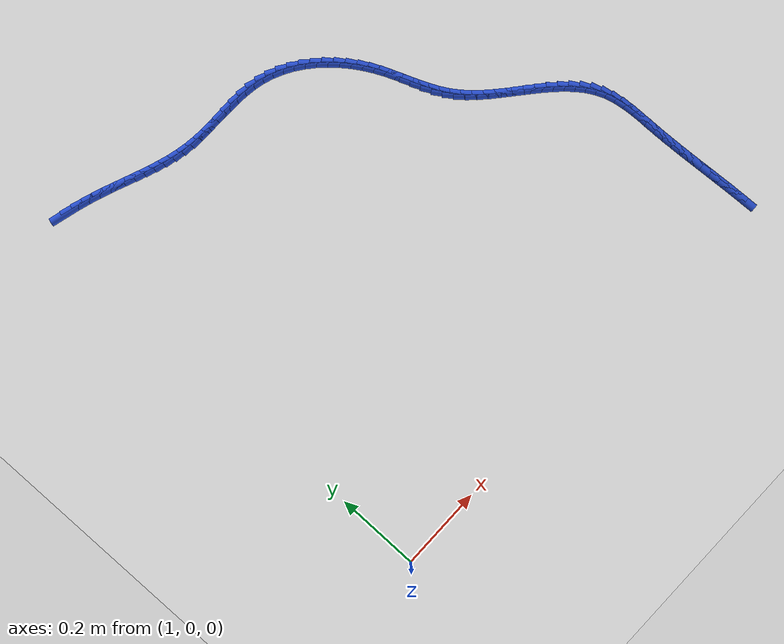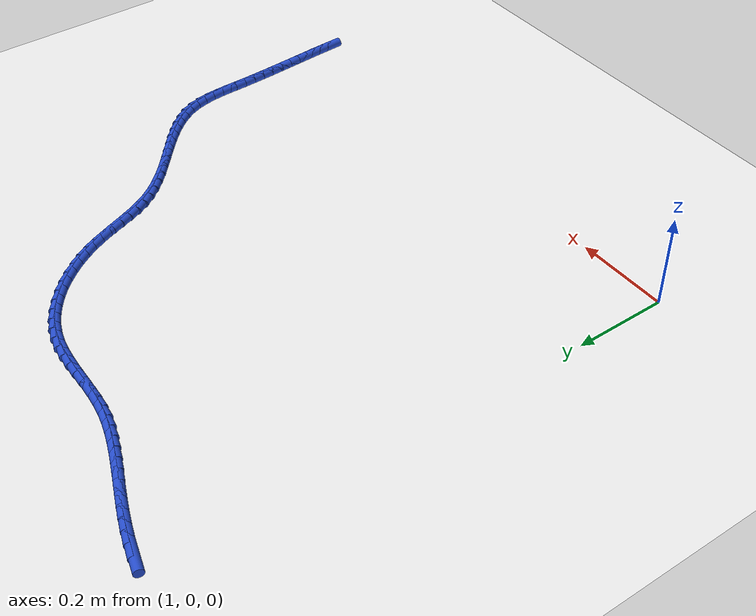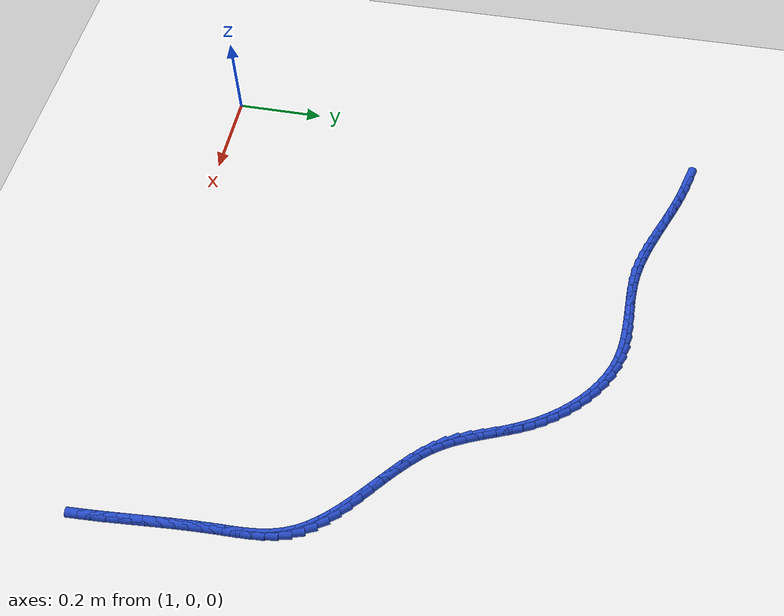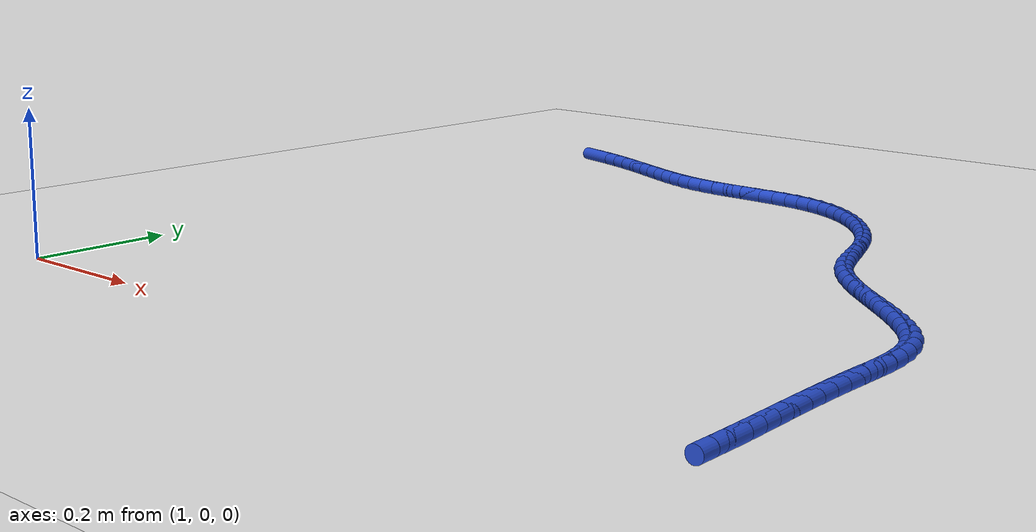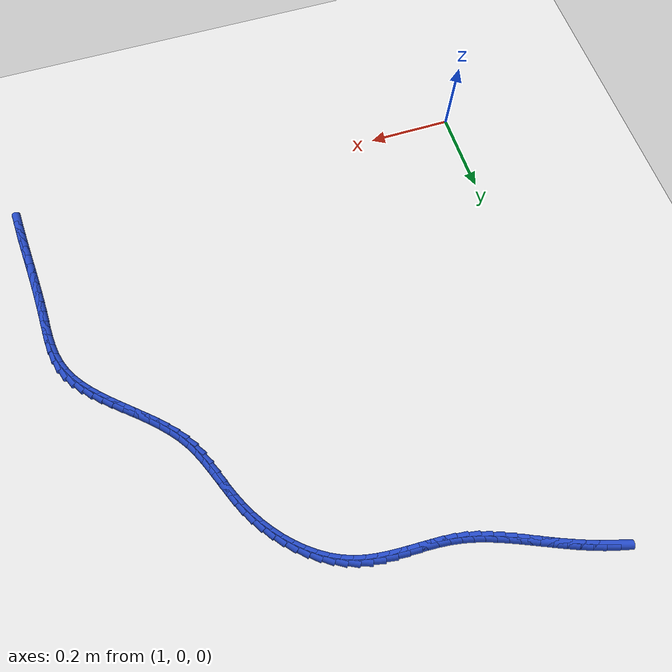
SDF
<sdf version="1.6">
 <world name="default">
  <model name="ground_plane">
   <static>1</static>
   <link name="link">
    <collision name="collision">
     <geometry><plane><normal>0 0 1</normal><size>100 100</size></plane></geometry>
     <surface><friction><ode><mu>100</mu><mu2>50</mu2></ode></friction></surface>
    </collision>
    <visual name="visual">
     <cast_shadows>0</cast_shadows>
     <geometry><plane><normal>0 0 1</normal><size>100 100</size></plane></geometry>
     <material>
      <script><uri>file://media/materials/scripts/gazebo.material</uri><name>Gazebo/WhiteGlow</name></script>
     </material>
    </visual>
   </link>
  </model>
  <model name="line">
   <link name="link_68">
    <pose>1.0628093719733607 1.0906287862453112 0.01 0 1.57 -0.2802615138921303</pose>
    <collision name="collision">
     <geometry><cylinder><radius>0.01</radius><length>0.08</length></cylinder></geometry>
    </collision>
    <visual name="visual">
     <material>
      <script><name>Gazebo/Blue</name><uri>file://media/materials/scripts/gazebo.material</uri></script>
     </material>
     <geometry><cylinder><radius>0.01</radius><length>0.08</length></cylinder></geometry>
    </visual>
   </link>
   <link name="link_69">
    <pose>1.0898194103138965 1.082854284743362 0.01 0 1.57 -0.3176067651948003</pose>
    <collision name="collision">
     <geometry><cylinder><radius>0.01</radius><length>0.08</length></cylinder></geometry>
    </collision>
    <visual name="visual">
     <material>
      <script><name>Gazebo/Blue</name><uri>file://media/materials/scripts/gazebo.material</uri></script>
     </material>
     <geometry><cylinder><radius>0.01</radius><length>0.08</length></cylinder></geometry>
    </visual>
   </link>
   <link name="link_70">
    <pose>1.1161449455556485 1.0742001481301984 0.01 0 1.57 -0.34963420881714574</pose>
    <collision name="collision">
     <geometry><cylinder><radius>0.01</radius><length>0.08</length></cylinder></geometry>
    </collision>
    <visual name="visual">
     <material>
      <script><name>Gazebo/Blue</name><uri>file://media/materials/scripts/gazebo.material</uri></script>
     </material>
     <geometry><cylinder><radius>0.01</radius><length>0.08</length></cylinder></geometry>
    </visual>
   </link>
   <link name="link_71">
    <pose>1.1415730427100592 1.064928707435475 0.01 0 1.57 -0.3742459113744424</pose>
    <collision name="collision">
     <geometry><cylinder><radius>0.01</radius><length>0.08</length></cylinder></geometry>
    </collision>
    <visual name="visual">
     <material>
      <script><name>Gazebo/Blue</name><uri>file://media/materials/scripts/gazebo.material</uri></script>
     </material>
     <geometry><cylinder><radius>0.01</radius><length>0.08</length></cylinder></geometry>
    </visual>
   </link>
   <link name="link_72">
    <pose>1.1661878675069677 1.0552610896295747 0.01 0 1.57 -0.3902260509429083</pose>
    <collision name="collision">
     <geometry><cylinder><radius>0.01</radius><length>0.08</length></cylinder></geometry>
    </collision>
    <visual name="visual">
     <material>
      <script><name>Gazebo/Blue</name><uri>file://media/materials/scripts/gazebo.material</uri></script>
     </material>
     <geometry><cylinder><radius>0.01</radius><length>0.08</length></cylinder></geometry>
    </visual>
   </link>
   <link name="link_73">
    <pose>1.1901396593611218 1.0454092581101886 0.01 0 1.57 -0.3968916456069579</pose>
    <collision name="collision">
     <geometry><cylinder><radius>0.01</radius><length>0.08</length></cylinder></geometry>
    </collision>
    <visual name="visual">
     <material>
      <script><name>Gazebo/Blue</name><uri>file://media/materials/scripts/gazebo.material</uri></script>
     </material>
     <geometry><cylinder><radius>0.01</radius><length>0.08</length></cylinder></geometry>
    </visual>
   </link>
   <link name="link_74">
    <pose>1.2135786576872707 1.0355851762750101 0.01 0 1.57 -0.39365272293426523</pose>
    <collision name="collision">
     <geometry><cylinder><radius>0.01</radius><length>0.08</length></cylinder></geometry>
    </collision>
    <visual name="visual">
     <material>
      <script><name>Gazebo/Blue</name><uri>file://media/materials/scripts/gazebo.material</uri></script>
     </material>
     <geometry><cylinder><radius>0.01</radius><length>0.08</length></cylinder></geometry>
    </visual>
   </link>
   <link name="link_75">
    <pose>1.2366551019001624 1.0260008075217302 0.01 0 1.57 -0.3800176555319</pose>
    <collision name="collision">
     <geometry><cylinder><radius>0.01</radius><length>0.08</length></cylinder></geometry>
    </collision>
    <visual name="visual">
     <material>
      <script><name>Gazebo/Blue</name><uri>file://media/materials/scripts/gazebo.material</uri></script>
     </material>
     <geometry><cylinder><radius>0.01</radius><length>0.08</length></cylinder></geometry>
    </visual>
   </link>
   <link name="link_76">
    <pose>1.2595192314145456 1.0168681152480417 0.01 0 1.57 -0.3556250150488615</pose>
    <collision name="collision">
     <geometry><cylinder><radius>0.01</radius><length>0.08</length></cylinder></geometry>
    </collision>
    <visual name="visual">
     <material>
      <script><name>Gazebo/Blue</name><uri>file://media/materials/scripts/gazebo.material</uri></script>
     </material>
     <geometry><cylinder><radius>0.01</radius><length>0.08</length></cylinder></geometry>
    </visual>
   </link>
   <link name="link_77">
    <pose>1.2823212856451687 1.0083990628516366 0.01 0 1.57 -0.3203098907652909</pose>
    <collision name="collision">
     <geometry><cylinder><radius>0.01</radius><length>0.08</length></cylinder></geometry>
    </collision>
    <visual name="visual">
     <material>
      <script><name>Gazebo/Blue</name><uri>file://media/materials/scripts/gazebo.material</uri></script>
     </material>
     <geometry><cylinder><radius>0.01</radius><length>0.08</length></cylinder></geometry>
    </visual>
   </link>
   <link name="link_78">
    <pose>1.3052115040067798 1.0008056137302064 0.01 0 1.57 -0.27420581645033437</pose>
    <collision name="collision">
     <geometry><cylinder><radius>0.01</radius><length>0.08</length></cylinder></geometry>
    </collision>
    <visual name="visual">
     <material>
      <script><name>Gazebo/Blue</name><uri>file://media/materials/scripts/gazebo.material</uri></script>
     </material>
     <geometry><cylinder><radius>0.01</radius><length>0.08</length></cylinder></geometry>
    </visual>
   </link>
   <link name="link_79">
    <pose>1.3283401259141272 0.9942997312814437 0.01 0 1.57 -0.21787027960239017</pose>
    <collision name="collision">
     <geometry><cylinder><radius>0.01</radius><length>0.08</length></cylinder></geometry>
    </collision>
    <visual name="visual">
     <material>
      <script><name>Gazebo/Blue</name><uri>file://media/materials/scripts/gazebo.material</uri></script>
     </material>
     <geometry><cylinder><radius>0.01</radius><length>0.08</length></cylinder></geometry>
    </visual>
   </link>
   <link name="link_80">
    <pose>1.35185739078196 0.9890933789030405 0.01 0 1.57 -0.15258427737276412</pose>
    <collision name="collision">
     <geometry><cylinder><radius>0.01</radius><length>0.08</length></cylinder></geometry>
    </collision>
    <visual name="visual">
     <material>
      <script><name>Gazebo/Blue</name><uri>file://media/materials/scripts/gazebo.material</uri></script>
     </material>
     <geometry><cylinder><radius>0.01</radius><length>0.08</length></cylinder></geometry>
    </visual>
   </link>
   <link name="link_81">
    <pose>1.3759116846736923 0.9853943200803523 0.01 0 1.57 -0.09104105246855446</pose>
    <collision name="collision">
     <geometry><cylinder><radius>0.01</radius><length>0.08</length></cylinder></geometry>
    </collision>
    <visual name="visual">
     <material>
      <script><name>Gazebo/Blue</name><uri>file://media/materials/scripts/gazebo.material</uri></script>
     </material>
     <geometry><cylinder><radius>0.01</radius><length>0.08</length></cylinder></geometry>
    </visual>
   </link>
   <link name="link_82">
    <pose>1.400534922306277 0.9831463805142846 0.01 0 1.57 -0.05063932183384074</pose>
    <collision name="collision">
     <geometry><cylinder><radius>0.01</radius><length>0.08</length></cylinder></geometry>
    </collision>
    <visual name="visual">
     <material>
      <script><name>Gazebo/Blue</name><uri>file://media/materials/scripts/gazebo.material</uri></script>
     </material>
     <geometry><cylinder><radius>0.01</radius><length>0.08</length></cylinder></geometry>
    </visual>
   </link>
   <link name="link_83">
    <pose>1.425575390376145 0.9818772631908301 0.01 0 1.57 -0.03159195191664703</pose>
    <collision name="collision">
     <geometry><cylinder><radius>0.01</radius><length>0.08</length></cylinder></geometry>
    </collision>
    <visual name="visual">
     <material>
      <script><name>Gazebo/Blue</name><uri>file://media/materials/scripts/gazebo.material</uri></script>
     </material>
     <geometry><cylinder><radius>0.01</radius><length>0.08</length></cylinder></geometry>
    </visual>
   </link>
   <link name="link_84">
    <pose>1.450865211971886 0.9810780424575064 0.01 0 1.57 -0.033027280614031415</pose>
    <collision name="collision">
     <geometry><cylinder><radius>0.01</radius><length>0.08</length></cylinder></geometry>
    </collision>
    <visual name="visual">
     <material>
      <script><name>Gazebo/Blue</name><uri>file://media/materials/scripts/gazebo.material</uri></script>
     </material>
     <geometry><cylinder><radius>0.01</radius><length>0.08</length></cylinder></geometry>
    </visual>
   </link>
   <link name="link_85">
    <pose>1.476236510182089 0.9802397926618301 0.01 0 1.57 -0.05476859028792677</pose>
    <collision name="collision">
     <geometry><cylinder><radius>0.01</radius><length>0.08</length></cylinder></geometry>
    </collision>
    <visual name="visual">
     <material>
      <script><name>Gazebo/Blue</name><uri>file://media/materials/scripts/gazebo.material</uri></script>
     </material>
     <geometry><cylinder><radius>0.01</radius><length>0.08</length></cylinder></geometry>
    </visual>
   </link>
   <link name="link_86">
    <pose>1.5015214080953452 0.9788535881513192 0.01 0 1.57 -0.09729566542460004</pose>
    <collision name="collision">
     <geometry><cylinder><radius>0.01</radius><length>0.08</length></cylinder></geometry>
    </collision>
    <visual name="visual">
     <material>
      <script><name>Gazebo/Blue</name><uri>file://media/materials/scripts/gazebo.material</uri></script>
     </material>
     <geometry><cylinder><radius>0.01</radius><length>0.08</length></cylinder></geometry>
    </visual>
   </link>
   <link name="link_87">
    <pose>1.5265520288002434 0.9764105032734904 0.01 0 1.57 -0.16148838562098314</pose>
    <collision name="collision">
     <geometry><cylinder><radius>0.01</radius><length>0.08</length></cylinder></geometry>
    </collision>
    <visual name="visual">
     <material>
      <script><name>Gazebo/Blue</name><uri>file://media/materials/scripts/gazebo.material</uri></script>
     </material>
     <geometry><cylinder><radius>0.01</radius><length>0.08</length></cylinder></geometry>
    </visual>
   </link>
   <link name="link_88">
    <pose>1.5511604953853733 0.972401612375861 0.01 0 1.57 -0.2480724559041302</pose>
    <collision name="collision">
     <geometry><cylinder><radius>0.01</radius><length>0.08</length></cylinder></geometry>
    </collision>
    <visual name="visual">
     <material>
      <script><name>Gazebo/Blue</name><uri>file://media/materials/scripts/gazebo.material</uri></script>
     </material>
     <geometry><cylinder><radius>0.01</radius><length>0.08</length></cylinder></geometry>
    </visual>
   </link>
   <link name="link_89">
    <pose>1.5751789309393256 0.9663179898059485 0.01 0 1.57 -0.35248880390387805</pose>
    <collision name="collision">
     <geometry><cylinder><radius>0.01</radius><length>0.08</length></cylinder></geometry>
    </collision>
    <visual name="visual">
     <material>
      <script><name>Gazebo/Blue</name><uri>file://media/materials/scripts/gazebo.material</uri></script>
     </material>
     <geometry><cylinder><radius>0.01</radius><length>0.08</length></cylinder></geometry>
    </visual>
   </link>
   <link name="link_90">
    <pose>1.5984519741683418 0.9577569661334764 0.01 0 1.57 -0.4546174491723738</pose>
    <collision name="collision">
     <geometry><cylinder><radius>0.01</radius><length>0.08</length></cylinder></geometry>
    </collision>
    <visual name="visual">
     <material>
      <script><name>Gazebo/Blue</name><uri>file://media/materials/scripts/gazebo.material</uri></script>
     </material>
     <geometry><cylinder><radius>0.01</radius><length>0.08</length></cylinder></geometry>
    </visual>
   </link>
   <link name="link_91">
    <pose>1.620880658964905 0.9467946608786438 0.01 0 1.57 -0.5489903803557981</pose>
    <collision name="collision">
     <geometry><cylinder><radius>0.01</radius><length>0.08</length></cylinder></geometry>
    </collision>
    <visual name="visual">
     <material>
      <script><name>Gazebo/Blue</name><uri>file://media/materials/scripts/gazebo.material</uri></script>
     </material>
     <geometry><cylinder><radius>0.01</radius><length>0.08</length></cylinder></geometry>
    </visual>
   </link>
   <link name="link_92">
    <pose>1.642381896474009 0.9336419896953775 0.01 0 1.57 -0.6360918759632034</pose>
    <collision name="collision">
     <geometry><cylinder><radius>0.01</radius><length>0.08</length></cylinder></geometry>
    </collision>
    <visual name="visual">
     <material>
      <script><name>Gazebo/Blue</name><uri>file://media/materials/scripts/gazebo.material</uri></script>
     </material>
     <geometry><cylinder><radius>0.01</radius><length>0.08</length></cylinder></geometry>
    </visual>
   </link>
   <link name="link_93">
    <pose>1.6628725987227213 0.9185098757263233 0.01 0 1.57 -0.7167293665847518</pose>
    <collision name="collision">
     <geometry><cylinder><radius>0.01</radius><length>0.08</length></cylinder></geometry>
    </collision>
    <visual name="visual">
     <material>
      <script><name>Gazebo/Blue</name><uri>file://media/materials/scripts/gazebo.material</uri></script>
     </material>
     <geometry><cylinder><radius>0.01</radius><length>0.08</length></cylinder></geometry>
    </visual>
   </link>
   <link name="link_94">
    <pose>1.6822696777381105 0.9016092421141275 0.01 0 1.57 -0.7918831160025479</pose>
    <collision name="collision">
     <geometry><cylinder><radius>0.01</radius><length>0.08</length></cylinder></geometry>
    </collision>
    <visual name="visual">
     <material>
      <script><name>Gazebo/Blue</name><uri>file://media/materials/scripts/gazebo.material</uri></script>
     </material>
     <geometry><cylinder><radius>0.01</radius><length>0.08</length></cylinder></geometry>
    </visual>
   </link>
   <link name="link_95">
    <pose>1.7004900455472451 0.8831510120014369 0.01 0 1.57 -0.8626086628195517</pose>
    <collision name="collision">
     <geometry><cylinder><radius>0.01</radius><length>0.08</length></cylinder></geometry>
    </collision>
    <visual name="visual">
     <material>
      <script><name>Gazebo/Blue</name><uri>file://media/materials/scripts/gazebo.material</uri></script>
     </material>
     <geometry><cylinder><radius>0.01</radius><length>0.08</length></cylinder></geometry>
    </visual>
   </link>
   <link name="link_96">
    <pose>1.7174506141771926 0.8633461085308975 0.01 0 1.57 -0.9299842853119031</pose>
    <collision name="collision">
     <geometry><cylinder><radius>0.01</radius><length>0.08</length></cylinder></geometry>
    </collision>
    <visual name="visual">
     <material>
      <script><name>Gazebo/Blue</name><uri>file://media/materials/scripts/gazebo.material</uri></script>
     </material>
     <geometry><cylinder><radius>0.01</radius><length>0.08</length></cylinder></geometry>
    </visual>
   </link>
   <link name="link_97">
    <pose>1.7330682956550219 0.842405454845156 0.01 0 1.57 -0.9950919353026636</pose>
    <collision name="collision">
     <geometry><cylinder><radius>0.01</radius><length>0.08</length></cylinder></geometry>
    </collision>
    <visual name="visual">
     <material>
      <script><name>Gazebo/Blue</name><uri>file://media/materials/scripts/gazebo.material</uri></script>
     </material>
     <geometry><cylinder><radius>0.01</radius><length>0.08</length></cylinder></geometry>
    </visual>
   </link>
   <link name="link_98">
    <pose>1.747260002007801 0.8205399740868586 0.01 0 1.57 -1.0590214258251578</pose>
    <collision name="collision">
     <geometry><cylinder><radius>0.01</radius><length>0.08</length></cylinder></geometry>
    </collision>
    <visual name="visual">
     <material>
      <script><name>Gazebo/Blue</name><uri>file://media/materials/scripts/gazebo.material</uri></script>
     </material>
     <geometry><cylinder><radius>0.01</radius><length>0.08</length></cylinder></geometry>
    </visual>
   </link>
   <link name="link_99">
    <pose>1.7599426452625988 0.797960589398652 0.01 0 1.57 -1.1205011053543592</pose>
    <collision name="collision">
     <geometry><cylinder><radius>0.01</radius><length>0.08</length></cylinder></geometry>
    </collision>
    <visual name="visual">
     <material>
      <script><name>Gazebo/Blue</name><uri>file://media/materials/scripts/gazebo.material</uri></script>
     </material>
     <geometry><cylinder><radius>0.01</radius><length>0.08</length></cylinder></geometry>
    </visual>
   </link>
   <link name="link_100">
    <pose>1.7711004528419823 0.7748795720021969 0.01 0 1.57 -1.165955889549486</pose>
    <collision name="collision">
     <geometry><cylinder><radius>0.01</radius><length>0.08</length></cylinder></geometry>
    </collision>
    <visual name="visual">
     <material>
      <script><name>Gazebo/Blue</name><uri>file://media/materials/scripts/gazebo.material</uri></script>
     </material>
     <geometry><cylinder><radius>0.01</radius><length>0.08</length></cylinder></geometry>
    </visual>
   </link>
   <link name="link_101">
    <pose>1.7811115290249269 0.7515170810193971 0.01 0 1.57 -1.1896679497162082</pose>
    <collision name="collision">
     <geometry><cylinder><radius>0.01</radius><length>0.08</length></cylinder></geometry>
    </collision>
    <visual name="visual">
     <material>
      <script><name>Gazebo/Blue</name><uri>file://media/materials/scripts/gazebo.material</uri></script>
     </material>
     <geometry><cylinder><radius>0.01</radius><length>0.08</length></cylinder></geometry>
    </visual>
   </link>
   <link name="link_102">
    <pose>1.790496809932867 0.7280961359669894 0.01 0 1.57 -1.1911030704776033</pose>
    <collision name="collision">
     <geometry><cylinder><radius>0.01</radius><length>0.08</length></cylinder></geometry>
    </collision>
    <visual name="visual">
     <material>
      <script><name>Gazebo/Blue</name><uri>file://media/materials/scripts/gazebo.material</uri></script>
     </material>
     <geometry><cylinder><radius>0.01</radius><length>0.08</length></cylinder></geometry>
    </visual>
   </link>
   <link name="link_103">
    <pose>1.799777431421022 0.7048397603616401 0.01 0 1.57 -1.1697457850876183</pose>
    <collision name="collision">
     <geometry><cylinder><radius>0.01</radius><length>0.08</length></cylinder></geometry>
    </collision>
    <visual name="visual">
     <material>
      <script><name>Gazebo/Blue</name><uri>file://media/materials/scripts/gazebo.material</uri></script>
     </material>
     <geometry><cylinder><radius>0.01</radius><length>0.08</length></cylinder></geometry>
    </visual>
   </link>
   <link name="link_104">
    <pose>1.8094745293446133 0.6819709777200168 0.01 0 1.57 -1.1250747582853908</pose>
    <collision name="collision">
     <geometry><cylinder><radius>0.01</radius><length>0.08</length></cylinder></geometry>
    </collision>
    <visual name="visual">
     <material>
      <script><name>Gazebo/Blue</name><uri>file://media/materials/scripts/gazebo.material</uri></script>
     </material>
     <geometry><cylinder><radius>0.01</radius><length>0.08</length></cylinder></geometry>
    </visual>
   </link>
   <link name="link_105">
    <pose>1.8201092395588605 0.6597128115587868 0.01 0 1.57 -1.0569131825186133</pose>
    <collision name="collision">
     <geometry><cylinder><radius>0.01</radius><length>0.08</length></cylinder></geometry>
    </collision>
    <visual name="visual">
     <material>
      <script><name>Gazebo/Blue</name><uri>file://media/materials/scripts/gazebo.material</uri></script>
     </material>
     <geometry><cylinder><radius>0.01</radius><length>0.08</length></cylinder></geometry>
    </visual>
   </link>
   <link name="link_106">
    <pose>1.8322026979189854 0.6382882853946176 0.01 0 1.57 -0.9680724624564545</pose>
    <collision name="collision">
     <geometry><cylinder><radius>0.01</radius><length>0.08</length></cylinder></geometry>
    </collision>
    <visual name="visual">
     <material>
      <script><name>Gazebo/Blue</name><uri>file://media/materials/scripts/gazebo.material</uri></script>
     </material>
     <geometry><cylinder><radius>0.01</radius><length>0.08</length></cylinder></geometry>
    </visual>
   </link>
   <link name="link_107">
    <pose>1.846232378309568 0.6179005466663446 0.01 0 1.57 -0.882873518808734</pose>
    <collision name="collision">
     <geometry><cylinder><radius>0.01</radius><length>0.08</length></cylinder></geometry>
    </collision>
    <visual name="visual">
     <material>
      <script><name>Gazebo/Blue</name><uri>file://media/materials/scripts/gazebo.material</uri></script>
     </material>
     <geometry><cylinder><radius>0.01</radius><length>0.08</length></cylinder></geometry>
    </visual>
   </link>
   <link name="link_108">
    <pose>1.8621614248520895 0.5985186063720385 0.01 0 1.57 -0.816018389742554</pose>
    <collision name="collision">
     <geometry><cylinder><radius>0.01</radius><length>0.08</length></cylinder></geometry>
    </collision>
    <visual name="visual">
     <material>
      <script><name>Gazebo/Blue</name><uri>file://media/materials/scripts/gazebo.material</uri></script>
     </material>
     <geometry><cylinder><radius>0.01</radius><length>0.08</length></cylinder></geometry>
    </visual>
   </link>
   <link name="link_109">
    <pose>1.8796179179542936 0.5799589456913687 0.01 0 1.57 -0.7667093168662983</pose>
    <collision name="collision">
     <geometry><cylinder><radius>0.01</radius><length>0.08</length></cylinder></geometry>
    </collision>
    <visual name="visual">
     <material>
      <script><name>Gazebo/Blue</name><uri>file://media/materials/scripts/gazebo.material</uri></script>
     </material>
     <geometry><cylinder><radius>0.01</radius><length>0.08</length></cylinder></geometry>
    </visual>
   </link>
   <link name="link_110">
    <pose>1.8982242063316914 0.5620354365868928 0.01 0 1.57 -0.7337521998733069</pose>
    <collision name="collision">
     <geometry><cylinder><radius>0.01</radius><length>0.08</length></cylinder></geometry>
    </collision>
    <visual name="visual">
     <material>
      <script><name>Gazebo/Blue</name><uri>file://media/materials/scripts/gazebo.material</uri></script>
     </material>
     <geometry><cylinder><radius>0.01</radius><length>0.08</length></cylinder></geometry>
    </visual>
   </link>
   <link name="link_111">
    <pose>1.917602638699795 0.5445619510211688 0.01 0 1.57 -0.7161967611122856</pose>
    <collision name="collision">
     <geometry><cylinder><radius>0.01</radius><length>0.08</length></cylinder></geometry>
    </collision>
    <visual name="visual">
     <material>
      <script><name>Gazebo/Blue</name><uri>file://media/materials/scripts/gazebo.material</uri></script>
     </material>
     <geometry><cylinder><radius>0.01</radius><length>0.08</length></cylinder></geometry>
    </visual>
   </link>
   <link name="link_112">
    <pose>1.9373755637741166 0.5273523609567545 0.01 0 1.57 -0.7135332551910815</pose>
    <collision name="collision">
     <geometry><cylinder><radius>0.01</radius><length>0.08</length></cylinder></geometry>
    </collision>
    <visual name="visual">
     <material>
      <script><name>Gazebo/Blue</name><uri>file://media/materials/scripts/gazebo.material</uri></script>
     </material>
     <geometry><cylinder><radius>0.01</radius><length>0.08</length></cylinder></geometry>
    </visual>
   </link>
   <link name="link_113">
    <pose>1.957165330270167 0.5102205383562084 0.01 0 1.57 -0.7257791056894338</pose>
    <collision name="collision">
     <geometry><cylinder><radius>0.01</radius><length>0.08</length></cylinder></geometry>
    </collision>
    <visual name="visual">
     <material>
      <script><name>Gazebo/Blue</name><uri>file://media/materials/scripts/gazebo.material</uri></script>
     </material>
     <geometry><cylinder><radius>0.01</radius><length>0.08</length></cylinder></geometry>
    </visual>
   </link>
   <link name="link_114">
    <pose>1.9765942869034587 0.4929803551820878 0.01 0 1.57 -0.7535023350371869</pose>
    <collision name="collision">
     <geometry><cylinder><radius>0.01</radius><length>0.08</length></cylinder></geometry>
    </collision>
    <visual name="visual">
     <material>
      <script><name>Gazebo/Blue</name><uri>file://media/materials/scripts/gazebo.material</uri></script>
     </material>
     <geometry><cylinder><radius>0.01</radius><length>0.08</length></cylinder></geometry>
    </visual>
   </link>
   <link name="link_115">
    <pose>1.9952847823895032 0.47544568339695065 0.01 0 1.57 -0.79778610649099</pose>
    <collision name="collision">
     <geometry><cylinder><radius>0.01</radius><length>0.08</length></cylinder></geometry>
    </collision>
    <visual name="visual">
     <material>
      <script><name>Gazebo/Blue</name><uri>file://media/materials/scripts/gazebo.material</uri></script>
     </material>
     <geometry><cylinder><radius>0.01</radius><length>0.08</length></cylinder></geometry>
    </visual>
   </link>
   <link name="link_116">
    <pose>2.0128591654438117 0.4574303949633549 0.01 0 1.57 -0.860092521296966</pose>
    <collision name="collision">
     <geometry><cylinder><radius>0.01</radius><length>0.08</length></cylinder></geometry>
    </collision>
    <visual name="visual">
     <material>
      <script><name>Gazebo/Blue</name><uri>file://media/materials/scripts/gazebo.material</uri></script>
     </material>
     <geometry><cylinder><radius>0.01</radius><length>0.08</length></cylinder></geometry>
    </visual>
   </link>
   <link name="link_117">
    <pose>2.0289397847818966 0.4387483618438586 0.01 0 1.57 -0.9419330780921054</pose>
    <collision name="collision">
     <geometry><cylinder><radius>0.01</radius><length>0.08</length></cylinder></geometry>
    </collision>
    <visual name="visual">
     <material>
      <script><name>Gazebo/Blue</name><uri>file://media/materials/scripts/gazebo.material</uri></script>
     </material>
     <geometry><cylinder><radius>0.01</radius><length>0.08</length></cylinder></geometry>
    </visual>
   </link>
   <link name="link_118">
    <pose>2.0431489891192696 0.41921345600101945 0.01 0 1.57 -1.0442212052431004</pose>
    <collision name="collision">
     <geometry><cylinder><radius>0.01</radius><length>0.08</length></cylinder></geometry>
    </collision>
    <visual name="visual">
     <material>
      <script><name>Gazebo/Blue</name><uri>file://media/materials/scripts/gazebo.material</uri></script>
     </material>
     <geometry><cylinder><radius>0.01</radius><length>0.08</length></cylinder></geometry>
    </visual>
   </link>
   <link name="link_119">
    <pose>2.055109127171442 0.3986395493973956 0.01 0 1.57 -1.1662542782640228</pose>
    <collision name="collision">
     <geometry><cylinder><radius>0.01</radius><length>0.08</length></cylinder></geometry>
    </collision>
    <visual name="visual">
     <material>
      <script><name>Gazebo/Blue</name><uri>file://media/materials/scripts/gazebo.material</uri></script>
     </material>
     <geometry><cylinder><radius>0.01</radius><length>0.08</length></cylinder></geometry>
    </visual>
   </link>
   <link name="link_120">
    <pose>2.0644425479448776 0.37684051413574926 0.01 0 1.57 -1.2967564115834922</pose>
    <collision name="collision">
     <geometry><cylinder><radius>0.01</radius><length>0.08</length></cylinder></geometry>
    </collision>
    <visual name="visual">
     <material>
      <script><name>Gazebo/Blue</name><uri>file://media/materials/scripts/gazebo.material</uri></script>
     </material>
     <geometry><cylinder><radius>0.01</radius><length>0.08</length></cylinder></geometry>
    </visual>
   </link>
   <link name="link_121">
    <pose>2.0709439070973708 0.353713254014968 0.01 0 1.57 -1.4020770352045215</pose>
    <collision name="collision">
     <geometry><cylinder><radius>0.01</radius><length>0.08</length></cylinder></geometry>
    </collision>
    <visual name="visual">
     <material>
      <script><name>Gazebo/Blue</name><uri>file://media/materials/scripts/gazebo.material</uri></script>
     </material>
     <geometry><cylinder><radius>0.01</radius><length>0.08</length></cylinder></geometry>
    </visual>
   </link>
   <link name="link_122">
    <pose>2.075072617533486 0.32947500824341575 0.01 0 1.57 -1.47625617850767</pose>
    <collision name="collision">
     <geometry><cylinder><radius>0.01</radius><length>0.08</length></cylinder></geometry>
    </collision>
    <visual name="visual">
     <material>
      <script><name>Gazebo/Blue</name><uri>file://media/materials/scripts/gazebo.material</uri></script>
     </material>
     <geometry><cylinder><radius>0.01</radius><length>0.08</length></cylinder></geometry>
    </visual>
   </link>
   <link name="link_123">
    <pose>2.0774483798104715 0.3044202559709647 0.01 0 1.57 -1.5222546952155507</pose>
    <collision name="collision">
     <geometry><cylinder><radius>0.01</radius><length>0.08</length></cylinder></geometry>
    </collision>
    <visual name="visual">
     <material>
      <script><name>Gazebo/Blue</name><uri>file://media/materials/scripts/gazebo.material</uri></script>
     </material>
     <geometry><cylinder><radius>0.01</radius><length>0.08</length></cylinder></geometry>
    </visual>
   </link>
   <link name="link_124">
    <pose>2.078690894485576 0.27884347634748635 0.01 0 1.57 -1.5425540175933303</pose>
    <collision name="collision">
     <geometry><cylinder><radius>0.01</radius><length>0.08</length></cylinder></geometry>
    </collision>
    <visual name="visual">
     <material>
      <script><name>Gazebo/Blue</name><uri>file://media/materials/scripts/gazebo.material</uri></script>
     </material>
     <geometry><cylinder><radius>0.01</radius><length>0.08</length></cylinder></geometry>
    </visual>
   </link>
   <link name="link_125">
    <pose>2.07941986211605 0.2530391485228529 0.01 0 1.57 -1.539227342739668</pose>
    <collision name="collision">
     <geometry><cylinder><radius>0.01</radius><length>0.08</length></cylinder></geometry>
    </collision>
    <visual name="visual">
     <material>
      <script><name>Gazebo/Blue</name><uri>file://media/materials/scripts/gazebo.material</uri></script>
     </material>
     <geometry><cylinder><radius>0.01</radius><length>0.08</length></cylinder></geometry>
    </visual>
   </link>
   <link name="link_126">
    <pose>2.080232953270325 0.22729169254455625 0.01 0 1.57 -1.5264248926288857</pose>
    <collision name="collision">
     <geometry><cylinder><radius>0.01</radius><length>0.08</length></cylinder></geometry>
    </collision>
    <visual name="visual">
     <material>
      <script><name>Gazebo/Blue</name><uri>file://media/materials/scripts/gazebo.material</uri></script>
     </material>
     <geometry><cylinder><radius>0.01</radius><length>0.08</length></cylinder></geometry>
    </visual>
   </link>
   <link name="link_127">
    <pose>2.081368290982288 0.20172135563681373 0.01 0 1.57 -1.5156392840107373</pose>
    <collision name="collision">
     <geometry><cylinder><radius>0.01</radius><length>0.08</length></cylinder></geometry>
    </collision>
    <visual name="visual">
     <material>
      <script><name>Gazebo/Blue</name><uri>file://media/materials/scripts/gazebo.material</uri></script>
     </material>
     <geometry><cylinder><radius>0.01</radius><length>0.08</length></cylinder></geometry>
    </visual>
   </link>
   <link name="link_128">
    <pose>2.082771073531153 0.176314632795387 0.01 0 1.57 -1.5072689577532252</pose>
    <collision name="collision">
     <geometry><cylinder><radius>0.01</radius><length>0.08</length></cylinder></geometry>
    </collision>
    <visual name="visual">
     <material>
      <script><name>Gazebo/Blue</name><uri>file://media/materials/scripts/gazebo.material</uri></script>
     </material>
     <geometry><cylinder><radius>0.01</radius><length>0.08</length></cylinder></geometry>
    </visual>
   </link>
   <link name="link_129">
    <pose>2.0843779694262 0.15105412424197456 0.01 0 1.57 -1.5013673148394748</pose>
    <collision name="collision">
     <geometry><cylinder><radius>0.01</radius><length>0.08</length></cylinder></geometry>
    </collision>
    <visual name="visual">
     <material>
      <script><name>Gazebo/Blue</name><uri>file://media/materials/scripts/gazebo.material</uri></script>
     </material>
     <geometry><cylinder><radius>0.01</radius><length>0.08</length></cylinder></geometry>
    </visual>
   </link>
   <link name="link_130">
    <pose>2.086125647176708 0.12592243019827487 0.01 0 1.57 -1.4979793469463871</pose>
    <collision name="collision">
     <geometry><cylinder><radius>0.01</radius><length>0.08</length></cylinder></geometry>
    </collision>
    <visual name="visual">
     <material>
      <script><name>Gazebo/Blue</name><uri>file://media/materials/scripts/gazebo.material</uri></script>
     </material>
     <geometry><cylinder><radius>0.01</radius><length>0.08</length></cylinder></geometry>
    </visual>
   </link>
   <link name="link_131">
    <pose>2.087950775291957 0.10090215088598654 0.01 0 1.57 -1.4971422950892348</pose>
    <collision name="collision">
     <geometry><cylinder><radius>0.01</radius><length>0.08</length></cylinder></geometry>
    </collision>
    <visual name="visual">
     <material>
      <script><name>Gazebo/Blue</name><uri>file://media/materials/scripts/gazebo.material</uri></script>
     </material>
     <geometry><cylinder><radius>0.01</radius><length>0.08</length></cylinder></geometry>
    </visual>
   </link>
   <link name="link_132">
    <pose>2.0897900222812265 0.0759758865268081 0.01 0 1.57 -1.4988859424335983</pose>
    <collision name="collision">
     <geometry><cylinder><radius>0.01</radius><length>0.08</length></cylinder></geometry>
    </collision>
    <visual name="visual">
     <material>
      <script><name>Gazebo/Blue</name><uri>file://media/materials/scripts/gazebo.material</uri></script>
     </material>
     <geometry><cylinder><radius>0.01</radius><length>0.08</length></cylinder></geometry>
    </visual>
   </link>
   <link name="link_133">
    <pose>2.0915800566537968 0.05112623734243807 0.01 0 1.57 -1.5032324837250775</pose>
    <collision name="collision">
     <geometry><cylinder><radius>0.01</radius><length>0.08</length></cylinder></geometry>
    </collision>
    <visual name="visual">
     <material>
      <script><name>Gazebo/Blue</name><uri>file://media/materials/scripts/gazebo.material</uri></script>
     </material>
     <geometry><cylinder><radius>0.01</radius><length>0.08</length></cylinder></geometry>
    </visual>
   </link>
   <link name="link_134">
    <pose>2.093257546918948 0.02633580355457534 0.01 0 1.57 -1.5101959318141502</pose>
    <collision name="collision">
     <geometry><cylinder><radius>0.01</radius><length>0.08</length></cylinder></geometry>
    </collision>
    <visual name="visual">
     <material>
      <script><name>Gazebo/Blue</name><uri>file://media/materials/scripts/gazebo.material</uri></script>
     </material>
     <geometry><cylinder><radius>0.01</radius><length>0.08</length></cylinder></geometry>
    </visual>
   </link>
   <link name="link_135">
    <pose>2.0947591615859587 0.0015871853849176824 0.01 0 1.57 -1.5197810419439468</pose>
    <collision name="collision">
     <geometry><cylinder><radius>0.01</radius><length>0.08</length></cylinder></geometry>
    </collision>
    <visual name="visual">
     <material>
      <script><name>Gazebo/Blue</name><uri>file://media/materials/scripts/gazebo.material</uri></script>
     </material>
     <geometry><cylinder><radius>0.01</radius><length>0.08</length></cylinder></geometry>
    </visual>
   </link>
  </model>
 </world>
</sdf>
